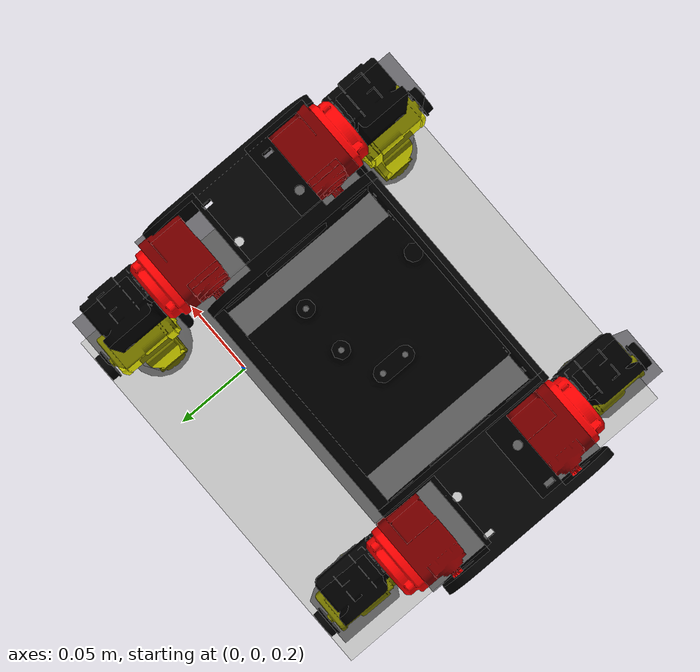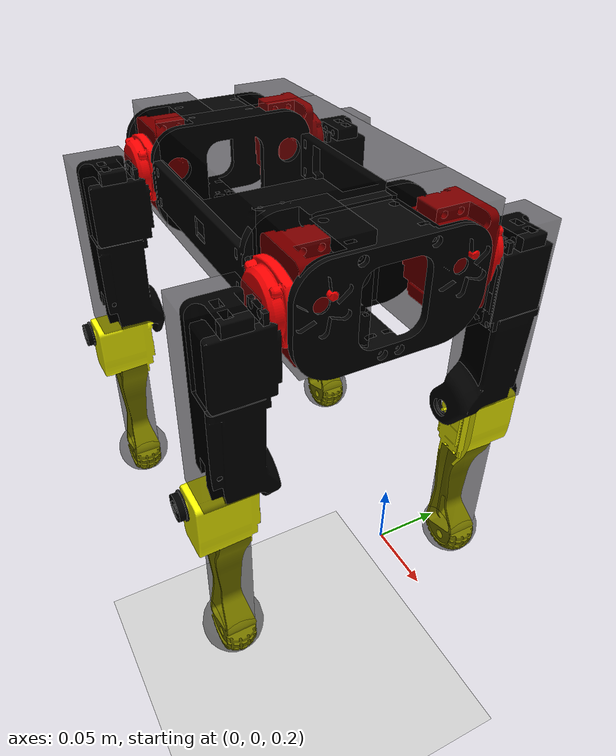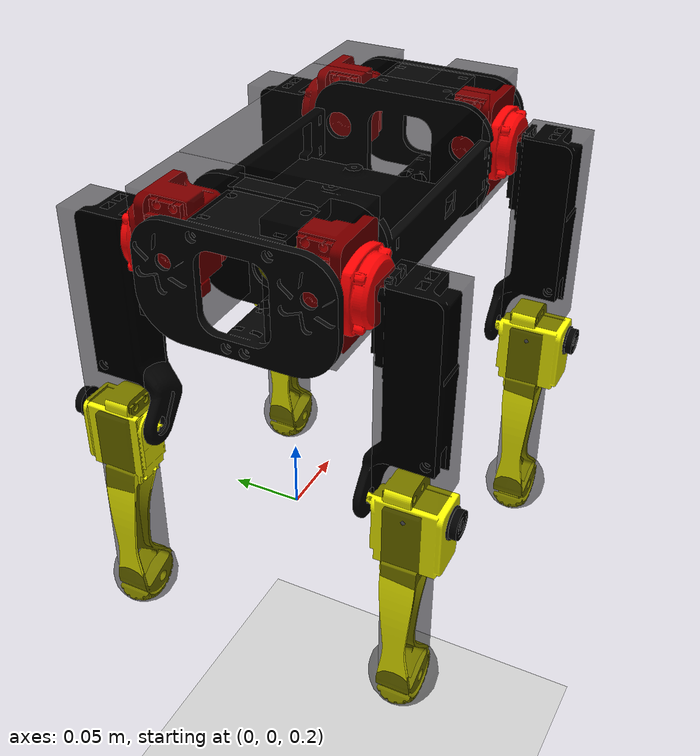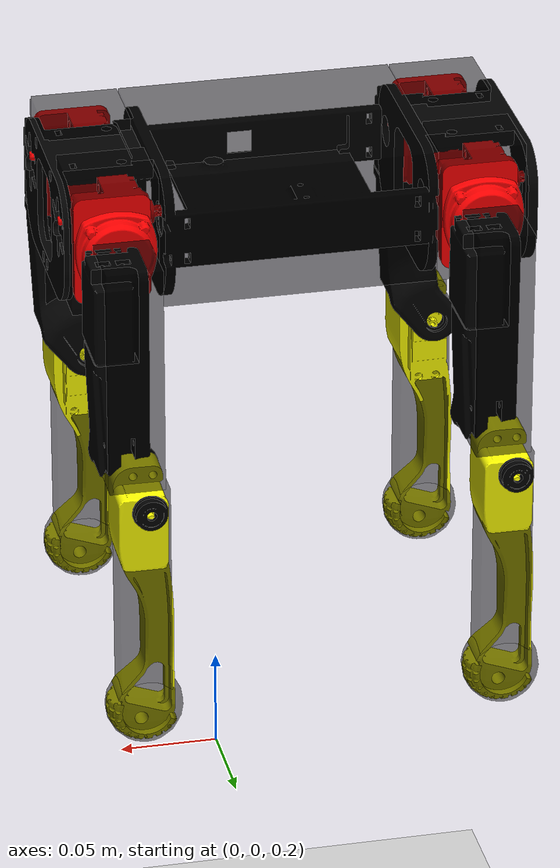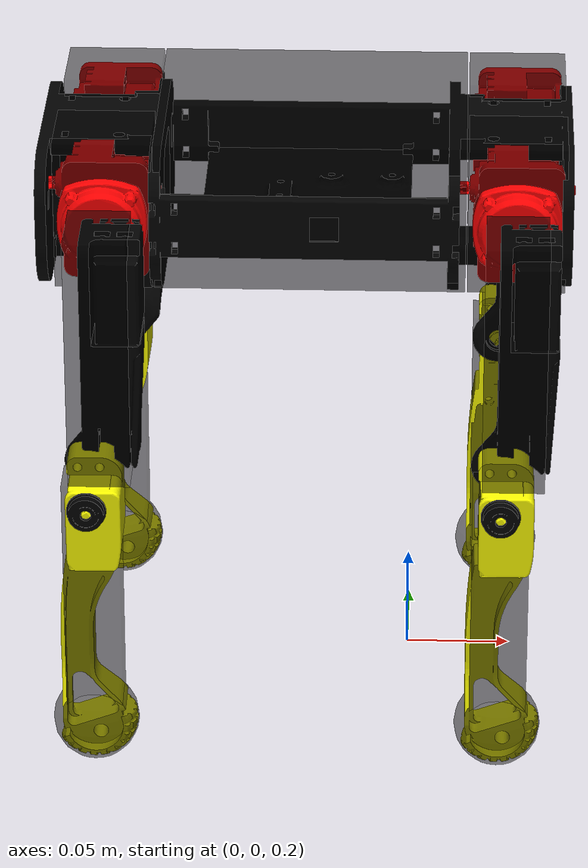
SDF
<?xml version="1.0" ?>
<sdf version="1.10">
    <world name="car_world">
        <physics name="1ms" type="ignored">
            <max_step_size>0.001</max_step_size>
            <real_time_factor>1.0</real_time_factor>
        </physics>
        <plugin
            filename="gz-sim-physics-system"
            name="gz::sim::systems::Physics">
        </plugin>
        <plugin
            filename="gz-sim-user-commands-system"
            name="gz::sim::systems::UserCommands">
        </plugin>
        <plugin
            filename="gz-sim-scene-broadcaster-system"
            name="gz::sim::systems::SceneBroadcaster">
        </plugin>

        <light type="directional" name="sun">
            <cast_shadows>true</cast_shadows>
            <pose>0 0 10 0 0 0</pose>
            <diffuse>0.8 0.8 0.8 1</diffuse>
            <specular>0.2 0.2 0.2 1</specular>
            <attenuation>
                <range>1000</range>
                <constant>0.9</constant>
                <linear>0.01</linear>
                <quadratic>0.001</quadratic>
            </attenuation>
            <direction>-0.5 0.1 -0.9</direction>
        </light>

        <model name="ground_plane">
            <static>true</static>
            <link name="link">
                <collision name="collision">
                <geometry>
                    <plane>
                    <normal>0 0 1</normal>
                    </plane>
                </geometry>
                </collision>
                <visual name="visual">
                <geometry>
                    <plane>
                    <normal>0 0 1</normal>
                    <size>100 100</size>
                    </plane>
                </geometry>
                <material>
                    <ambient>0.8 0.8 0.8 1</ambient>
                    <diffuse>0.8 0.8 0.8 1</diffuse>
                    <specular>0.8 0.8 0.8 1</specular>
                </material>
                </visual>
            </link>
        </model>

        <model name='spot' canonical_link='base_link'>
            <pose relative_to='world'>0 0 0.5 0 0 0</pose>

            <link name="base_link">
                <pose>-0.045 -0.060 -0.015 0 0 0</pose>
                <inertial>
                    <mass>2.8</mass>
                    <inertia>
                        <ixx>0.1</ixx>
                        <ixy>0</ixy>
                        <ixz>0</ixz>
                        <iyy>0.1</iyy>
                        <iyz>0</iyz>
                        <izz>0.1</izz>
                    </inertia>
                </inertial>
                <visual name='main_body'>
                    <pose>-0.045 -0.060 -0.015 0 0 0</pose>
                    <material>
                        <ambient>0 0 0 1</ambient>
                        <diffuse>0 0 0 1</diffuse>
                        <specular>0 0 0 1</specular>
                    </material>
                    <geometry>
                        <mesh>
                            <uri>../meshes/mainbody.stl</uri>
                            <scale>0.001 0.001 0.001</scale>
                        </mesh>
                    </geometry>
                </visual>
                <visual name='base_link_hitbox'>
                    <material>
                        <ambient>0 0 0 0.5</ambient>
                        <diffuse>0 0 0 0.5</diffuse>
                        <specular>0 0 0 0.5</specular>
                    </material>
                    <geometry>
                        <box>
                            <size>0.14 0.11 0.07 0 0 0</size>
                        </box>
                    </geometry>
                </visual>
                <collision name='main_body'>
                    <geometry>
                        <box>
                            <size>0.14 0.11 0.07 0 0 0</size>
                        </box>
                    </geometry>
                </collision>
            </link>

            <!-- Front Left Leg -->
            <link name='front_left_shoulder_link'>
                <visual name='front_left_shoulder'>
                    <pose>-0.135 -0.02 -0.01 0 0 0</pose>
                    <material>
                        <ambient>1 0 0 1</ambient>
                        <diffuse>1 0 0 1</diffuse>
                        <specular>1 0 0 1</specular>
                    </material>
                    <geometry>
                        <mesh>
                            <uri>../meshes/lshoulder.stl</uri>
                            <scale>0.001 0.001 0.001</scale>
                        </mesh>
                    </geometry>
                </visual>
                <visual name='front_left_shoulder_hitbox'>
                    <material>
                        <ambient>0 0 0 0.5</ambient>
                        <diffuse>0 0 0 0.5</diffuse>
                        <specular>0 0 0 0.5</specular>
                    </material>
                    <geometry>
                        <box>
                            <size>0.044 0.038 0.07</size>
                        </box>
                    </geometry>
                </visual>
                <collision name='front_left_shoulder'>
                    <geometry>
                        <box>
                            <size>0.044 0.038 0.07</size>
                        </box>
                    </geometry>
                </collision>
                <pose relative_to='front_left_shoulder'>0 0 0 0 0 0</pose>
                <inertial>
                    <mass>0.1</mass>
                    <inertia>
                        <ixx>0.1</ixx>
                        <ixy>0</ixy>
                        <ixz>0</ixz>
                        <iyy>0.1</iyy>
                        <iyz>0</iyz>
                        <izz>0.1</izz>
                    </inertia>
                </inertial>
            </link>

            <link name='front_left_leg_link'>
                <visual name='front_left_leg'>
                    <pose>-0.125 0.04 0.03 0 0 0</pose>
                    <material>
                        <ambient>0 0 0 1</ambient>
                        <diffuse>0 0 0 1</diffuse>
                        <specular>0 0 0 1</specular>
                    </material>
                    <geometry>
                        <mesh>
                            <uri>../meshes/larm.stl</uri>
                            <scale>0.001 0.001 0.001</scale>
                        </mesh>
                    </geometry>
                </visual>
                <visual name='front_left_leg_hitbox'>
                    <material>
                        <ambient>0 0 0 0.5</ambient>
                        <diffuse>0 0 0 0.5</diffuse>
                        <specular>0 0 0 0.5</specular>
                    </material>
                    <geometry>
                        <box>
                            <size>0.028 0.036 0.12</size>
                        </box>
                    </geometry>
                </visual>
                <collision name='front_left_leg'>
                    <geometry>
                        <box>
                            <size>0.028 0.036 0.12</size>
                        </box>
                    </geometry>
                </collision>
                <pose relative_to='front_left_leg'>0 0 -0.05 0 0 0</pose>
                <inertial>
                    <mass>0.15</mass>
                    <inertia>
                        <ixx>0.1</ixx>
                        <ixy>0</ixy>
                        <ixz>0</ixz>
                        <iyy>0.1</iyy>
                        <iyz>0</iyz>
                        <izz>0.1</izz>
                    </inertia>
                </inertial>

                <visual name='debug'>
                    <geometry>
                        <sphere>
                            <radius>0.005</radius>
                        </sphere>
                    </geometry>
                    <pose>-0.01 0 -0.072 0 0 0</pose>
                </visual>
            </link>

            <link name='front_left_foot_link'>
                <visual name='front_left_foot'>
                    <pose>-0.120 0.04 0.15 0 0 0</pose>
                    <material>
                        <ambient>1 1 0 1</ambient>
                        <diffuse>1 1 0 1</diffuse>
                        <specular>1 1 0 1</specular>
                    </material>
                    <geometry>
                        <mesh>
                            <uri>../meshes/lfoot.stl</uri>
                            <scale>0.001 0.001 0.001</scale>
                        </mesh>
                    </geometry>
                </visual>
                <visual name='front_left_foot_hitbox'>
                    <material>
                        <ambient>0 0 0 0.5</ambient>
                        <diffuse>0 0 0 0.5</diffuse>
                        <specular>0 0 0 0.5</specular>
                    </material>
                    <geometry>
                        <box>
                            <size>0.026 0.020 0.115</size>
                        </box>
                    </geometry>
                </visual>
                <collision name='front_left_foot'>
                    <geometry>
                        <box>
                            <size>0.026 0.020 0.115</size>
                        </box>
                    </geometry>
                </collision>
                <pose relative_to='front_left_foot'>0.0 0.0 -0.050 0 0 0</pose>
                <inertial>
                    <mass>0.1</mass>
                    <inertia>
                        <ixx>0.1</ixx>
                        <ixy>0</ixy>
                        <ixz>0</ixz>
                        <iyy>0.1</iyy>
                        <iyz>0</iyz>
                        <izz>0.1</izz>
                    </inertia>
                </inertial>
            </link>

            <link name='front_left_toe_link'>
                <visual name='front_left_foot'>
                    <pose>0 -0.01 0 0 -0.40010 0</pose>
                    <material>
                        <ambient>1 1 0 1</ambient>
                        <diffuse>1 1 0 1</diffuse>
                        <specular>1 1 0 1</specular>
                    </material>
                    <geometry>
                        <mesh>
                            <uri>../meshes/foot.stl</uri>
                            <scale>0.001 0.001 0.001</scale>
                        </mesh>
                    </geometry>
                </visual>
                <visual name='front_left_toe_hitbox'>
                    <material>
                        <ambient>0 0 0 0.5</ambient>
                        <diffuse>0 0 0 0.5</diffuse>
                        <specular>0 0 0 0.5</specular>
                    </material>
                    <geometry>
                        <sphere>
                            <radius>0.02</radius>
                        </sphere>
                    </geometry>
                </visual>
                <collision name='front_left_toe'>
                    <geometry>
                        <sphere>
                            <radius>0.02</radius>
                        </sphere>
                    </geometry>
                </collision>
                <pose relative_to='front_left_toe'>0 0 0 0 0 0</pose>
                <inertial>
                    <mass>0.1</mass>
                    <inertia>
                        <ixx>0.1</ixx>
                        <ixy>0</ixy>
                        <ixz>0</ixz>
                        <iyy>0.1</iyy>
                        <iyz>0</iyz>
                        <izz>0.1</izz>
                    </inertia>
                </inertial>
            </link>

            <joint name="front_left_shoulder" type="revolute">
                <pose relative_to='base_link'>-0.093 -0.036 0 0 0 0</pose>
                <parent>base_link</parent>
                <child>front_left_shoulder_link</child>
                <axis>
                    <xyz expressed_in='base_link'>1 0 0</xyz>
                    <limit>
                        <lower>-0.548</lower>
                        <upper>0.548</upper>
                    </limit>
                </axis>
            </joint>
            <joint name="front_left_leg" type="revolute">
                <pose relative_to='front_left_shoulder_link'>0 -0.052 0 0 0 0</pose>
                <parent>front_left_shoulder_link</parent>
                <child>front_left_leg_link</child>
                <axis>
                    <xyz expressed_in='front_left_shoulder_link'>0 1 0</xyz>
                    <limit>
                        <lower>-2.666</lower>
                        <upper>1.548</upper>
                    </limit>
                </axis>
            </joint>
            <joint name="front_left_foot" type="revolute">
                <pose relative_to='front_left_leg_link'>-0.005 0 -0.072 0 0 0</pose>
                <parent>front_left_leg_link</parent>
                <child>front_left_foot_link</child>
                <axis>
                    <xyz expressed_in='base_link'>0 1 0</xyz>
                    <limit>
                        <lower>-0.1</lower>
                        <upper>2.59</upper>
                    </limit>
                </axis>
            </joint>
            <joint name='front_left_toe' type='fixed'>
                <parent>front_left_foot_link</parent>
                <child>front_left_toe_link</child>
                <pose relative_to='front_left_foot_link'>0 0 -0.069 0 0 0</pose>
            </joint>

            <!-- FRONT RIGHT LEG -->

            <link name='front_right_shoulder_link'>
                <visual name='front_right_shoulder'>
                    <pose>-0.135 -0.09 -0.01 0 0 0</pose>
                    <material>
                        <ambient>1 0 0 1</ambient>
                        <diffuse>1 0 0 1</diffuse>
                        <specular>1 0 0 1</specular>
                    </material>
                    <geometry>
                        <mesh>
                            <uri>../meshes/rshoulder.stl</uri>
                            <scale>0.001 0.001 0.001</scale>
                        </mesh>
                    </geometry>
                </visual>
                <visual name='front_right_shoulder_hitbox'>
                    <material>
                        <ambient>0 0 0 0.5</ambient>
                        <diffuse>0 0 0 0.5</diffuse>
                        <specular>0 0 0 0.5</specular>
                    </material>
                    <geometry>
                        <box>
                            <size>0.044 0.038 0.07</size>
                        </box>
                    </geometry>
                </visual>
                <collision name='front_right_shoulder'>
                    <geometry>
                        <box>
                            <size>0.044 0.038 0.07</size>
                        </box>
                    </geometry>
                </collision>
                <pose relative_to='front_right_shoulder'>0 0 0 0 0 0</pose>
                <inertial>
                    <mass>0.1</mass>
                    <inertia>
                        <ixx>0.1</ixx>
                        <ixy>0</ixy>
                        <ixz>0</ixz>
                        <iyy>0.1</iyy>
                        <iyz>0</iyz>
                        <izz>0.1</izz>
                    </inertia>
                </inertial>
            </link>

            <link name='front_right_leg_link'>
                <visual name='front_right_leg'>
                    <pose>-0.125 -0.15 0.03 0 0 0</pose>
                    <material>
                        <ambient>0 0 0 1</ambient>
                        <diffuse>0 0 0 1</diffuse>
                        <specular>0 0 0 1</specular>
                    </material>
                    <geometry>
                        <mesh>
                            <uri>../meshes/rarm.stl</uri>
                            <scale>0.001 0.001 0.001</scale>
                        </mesh>
                    </geometry>
                </visual>
                <visual name='front_right_leg_hitbox'>
                    <material>
                        <ambient>0 0 0 0.5</ambient>
                        <diffuse>0 0 0 0.5</diffuse>
                        <specular>0 0 0 0.5</specular>
                    </material>
                    <geometry>
                        <box>
                            <size>0.028 0.036 0.12</size>
                        </box>
                    </geometry>
                </visual>
                <collision name='front_right_leg'>
                    <geometry>
                        <box>
                            <size>0.028 0.036 0.12</size>
                        </box>
                    </geometry>
                </collision>
                <pose relative_to='front_right_leg'>0 0 -0.05 0 0 0</pose>
                <inertial>
                    <mass>0.15</mass>
                    <inertia>
                        <ixx>0.1</ixx>
                        <ixy>0</ixy>
                        <ixz>0</ixz>
                        <iyy>0.1</iyy>
                        <iyz>0</iyz>
                        <izz>0.1</izz>
                    </inertia>
                </inertial>
            </link>

            <link name='front_right_foot_link'>
                <visual name='front_right_foot'>
                    <pose>-0.120 -0.15 0.15 0 0 0</pose>
                    <material>
                        <ambient>1 1 0 1</ambient>
                        <diffuse>1 1 0 1</diffuse>
                        <specular>1 1 0 1</specular>
                    </material>
                    <geometry>
                        <mesh>
                            <uri>../meshes/rfoot.stl</uri>
                            <scale>0.001 0.001 0.001</scale>
                        </mesh>
                    </geometry>
                </visual>
                <visual name='front_right_foot_hitbox'>
                    <material>
                        <ambient>0 0 0 0.5</ambient>
                        <diffuse>0 0 0 0.5</diffuse>
                        <specular>0 0 0 0.5</specular>
                    </material>
                    <geometry>
                        <box>
                            <size>0.026 0.020 0.115</size>
                        </box>
                    </geometry>
                </visual>
                <collision name='front_right_foot'>
                    <geometry>
                        <box>
                            <size>0.026 0.020 0.115</size>
                        </box>
                    </geometry>
                </collision>
                <pose relative_to='front_right_foot'>0.0 0.0 -0.050 0 0 0</pose>
                <inertial>
                    <mass>0.1</mass>
                    <inertia>
                        <ixx>0.1</ixx>
                        <ixy>0</ixy>
                        <ixz>0</ixz>
                        <iyy>0.1</iyy>
                        <iyz>0</iyz>
                        <izz>0.1</izz>
                    </inertia>
                </inertial>
            </link>

            <link name='front_right_toe_link'>
                <visual name='front_right_foot'>
                    <pose>0 -0.01 0 0 -0.40010 0</pose>
                    <material>
                        <ambient>1 1 0 1</ambient>
                        <diffuse>1 1 0 1</diffuse>
                        <specular>1 1 0 1</specular>
                    </material>
                    <geometry>
                        <mesh>
                            <uri>../meshes/foot.stl</uri>
                            <scale>0.001 0.001 0.001</scale>
                        </mesh>
                    </geometry>
                </visual>
                <visual name='front_right_toe_hitbox'>
                    <material>
                        <ambient>0 0 0 0.5</ambient>
                        <diffuse>0 0 0 0.5</diffuse>
                        <specular>0 0 0 0.5</specular>
                    </material>
                    <geometry>
                        <sphere>
                            <radius>0.02</radius>
                        </sphere>
                    </geometry>
                </visual>
                <collision name='front_right_toe'>
                    <geometry>
                        <sphere>
                            <radius>0.02</radius>
                        </sphere>
                    </geometry>
                </collision>
                <pose relative_to='front_right_toe'>0 0 0 0 0 0</pose>
                <inertial>
                    <mass>0.1</mass>
                    <inertia>
                        <ixx>0.1</ixx>
                        <ixy>0</ixy>
                        <ixz>0</ixz>
                        <iyy>0.1</iyy>
                        <iyz>0</iyz>
                        <izz>0.1</izz>
                    </inertia>
                </inertial>
            </link>

            <joint name="front_right_shoulder" type="revolute">
                <pose relative_to='base_link'>-0.093 0.036 0 0 0 0</pose>
                <parent>base_link</parent>
                <child>front_right_shoulder_link</child>
                <axis>
                    <xyz expressed_in='base_link'>1 0 0</xyz>
                    <limit>
                        <lower>-0.548</lower>
                        <upper>0.548</upper>
                    </limit>
                </axis>
            </joint>
            <joint name="front_right_leg" type="revolute">
                <pose relative_to='front_right_shoulder_link'>0 0.052 0 0 0 0</pose>
                <parent>front_right_shoulder_link</parent>
                <child>front_right_leg_link</child>
                <axis>
                    <xyz expressed_in='front_right_shoulder_link'>0 1 0</xyz>
                    <limit>
                        <lower>-2.666</lower>
                        <upper>1.548</upper>
                    </limit>
                </axis>
            </joint>
            <joint name="front_right_foot" type="revolute">
                <pose relative_to='front_right_leg_link'>-0.005 0 -0.072 0 0 0</pose>
                <parent>front_right_leg_link</parent>
                <child>front_right_foot_link</child>
                <axis>
                    <xyz expressed_in='base_link'>0 1 0</xyz>
                    <limit>
                        <lower>-0.1</lower>
                        <upper>2.59</upper>
                    </limit>
                </axis>
            </joint>
            <joint name='front_right_toe' type='fixed'>
                <parent>front_right_foot_link</parent>
                <child>front_right_toe_link</child>
                <pose relative_to='front_right_foot_link'>0 0 -0.069 0 0 0</pose>
            </joint>

            <!-- REAR LEFT LEG -->

            <link name='rear_left_shoulder_link'>
                <visual name='rear_left_shoulder'>
                    <pose>-0.135 -0.02 -0.01 0 0 0</pose>
                    <material>
                        <ambient>1 0 0 1</ambient>
                        <diffuse>1 0 0 1</diffuse>
                        <specular>1 0 0 1</specular>
                    </material>
                    <geometry>
                        <mesh>
                            <uri>../meshes/lshoulder.stl</uri>
                            <scale>0.001 0.001 0.001</scale>
                        </mesh>
                    </geometry>
                </visual>
                <visual name='rear_left_shoulder_hitbox'>
                    <material>
                        <ambient>0 0 0 0.5</ambient>
                        <diffuse>0 0 0 0.5</diffuse>
                        <specular>0 0 0 0.5</specular>
                    </material>
                    <geometry>
                        <box>
                            <size>0.044 0.038 0.07</size>
                        </box>
                    </geometry>
                </visual>
                <collision name='rear_left_shoulder'>
                    <geometry>
                        <box>
                            <size>0.044 0.038 0.07</size>
                        </box>
                    </geometry>
                </collision>
                <pose relative_to='rear_left_shoulder'>0 0 0 0 0 0</pose>
                <inertial>
                    <mass>0.1</mass>
                    <inertia>
                        <ixx>0.1</ixx>
                        <ixy>0</ixy>
                        <ixz>0</ixz>
                        <iyy>0.1</iyy>
                        <iyz>0</iyz>
                        <izz>0.1</izz>
                    </inertia>
                </inertial>
            </link>

            <link name='rear_left_leg_link'>
                <visual name='rear_left_leg'>
                    <pose>-0.125 0.04 0.03 0 0 0</pose>
                    <material>
                        <ambient>0 0 0 1</ambient>
                        <diffuse>0 0 0 1</diffuse>
                        <specular>0 0 0 1</specular>
                    </material>
                    <geometry>
                        <mesh>
                            <uri>../meshes/larm.stl</uri>
                            <scale>0.001 0.001 0.001</scale>
                        </mesh>
                    </geometry>
                </visual>
                <visual name='rear_left_leg_hitbox'>
                    <material>
                        <ambient>0 0 0 0.5</ambient>
                        <diffuse>0 0 0 0.5</diffuse>
                        <specular>0 0 0 0.5</specular>
                    </material>
                    <geometry>
                        <box>
                            <size>0.028 0.036 0.12</size>
                        </box>
                    </geometry>
                </visual>
                <collision name='rear_left_leg'>
                    <geometry>
                        <box>
                            <size>0.028 0.036 0.12</size>
                        </box>
                    </geometry>
                </collision>
                <pose relative_to='rear_left_leg'>0 0 -0.05 0 0 0</pose>
                <inertial>
                    <mass>0.15</mass>
                    <inertia>
                        <ixx>0.1</ixx>
                        <ixy>0</ixy>
                        <ixz>0</ixz>
                        <iyy>0.1</iyy>
                        <iyz>0</iyz>
                        <izz>0.1</izz>
                    </inertia>
                </inertial>

                <visual name='debug'>
                    <geometry>
                        <sphere>
                            <radius>0.005</radius>
                        </sphere>
                    </geometry>
                    <pose>-0.01 0 -0.072 0 0 0</pose>
                </visual>
            </link>

            <link name='rear_left_foot_link'>
                <visual name='rear_left_foot'>
                    <pose>-0.120 0.04 0.15 0 0 0</pose>
                    <material>
                        <ambient>1 1 0 1</ambient>
                        <diffuse>1 1 0 1</diffuse>
                        <specular>1 1 0 1</specular>
                    </material>
                    <geometry>
                        <mesh>
                            <uri>../meshes/lfoot.stl</uri>
                            <scale>0.001 0.001 0.001</scale>
                        </mesh>
                    </geometry>
                </visual>
                <visual name='rear_left_foot_hitbox'>
                    <material>
                        <ambient>0 0 0 0.5</ambient>
                        <diffuse>0 0 0 0.5</diffuse>
                        <specular>0 0 0 0.5</specular>
                    </material>
                    <geometry>
                        <box>
                            <size>0.026 0.020 0.115</size>
                        </box>
                    </geometry>
                </visual>
                <collision name='rear_left_foot'>
                    <geometry>
                        <box>
                            <size>0.026 0.020 0.115</size>
                        </box>
                    </geometry>
                </collision>
                <pose relative_to='rear_left_foot'>0.0 0.0 -0.050 0 0 0</pose>
                <inertial>
                    <mass>0.1</mass>
                    <inertia>
                        <ixx>0.1</ixx>
                        <ixy>0</ixy>
                        <ixz>0</ixz>
                        <iyy>0.1</iyy>
                        <iyz>0</iyz>
                        <izz>0.1</izz>
                    </inertia>
                </inertial>
            </link>

            <link name='rear_left_toe_link'>
                <visual name='rear_left_foot'>
                    <pose>0 -0.01 0 0 -0.40010 0</pose>
                    <material>
                        <ambient>1 1 0 1</ambient>
                        <diffuse>1 1 0 1</diffuse>
                        <specular>1 1 0 1</specular>
                    </material>
                    <geometry>
                        <mesh>
                            <uri>../meshes/foot.stl</uri>
                            <scale>0.001 0.001 0.001</scale>
                        </mesh>
                    </geometry>
                </visual>
                <visual name='rear_left_toe_hitbox'>
                    <material>
                        <ambient>0 0 0 0.5</ambient>
                        <diffuse>0 0 0 0.5</diffuse>
                        <specular>0 0 0 0.5</specular>
                    </material>
                    <geometry>
                        <sphere>
                            <radius>0.02</radius>
                        </sphere>
                    </geometry>
                </visual>
                <collision name='rear_left_toe'>
                    <geometry>
                        <sphere>
                            <radius>0.02</radius>
                        </sphere>
                    </geometry>
                </collision>
                <pose relative_to='rear_left_toe'>0 0 0 0 0 0</pose>
                <inertial>
                    <mass>0.1</mass>
                    <inertia>
                        <ixx>0.1</ixx>
                        <ixy>0</ixy>
                        <ixz>0</ixz>
                        <iyy>0.1</iyy>
                        <iyz>0</iyz>
                        <izz>0.1</izz>
                    </inertia>
                </inertial>
            </link>

            <joint name="rear_left_shoulder" type="revolute">
                <pose relative_to='base_link'>0.093 -0.036 0 0 0 0</pose>
                <parent>base_link</parent>
                <child>rear_left_shoulder_link</child>
                <axis>
                    <xyz expressed_in='base_link'>1 0 0</xyz>
                    <limit>
                        <lower>-0.548</lower>
                        <upper>0.548</upper>
                    </limit>
                </axis>
            </joint>
            <joint name="rear_left_leg" type="revolute">
                <pose relative_to='rear_left_shoulder_link'>0 -0.052 0 0 0 0</pose>
                <parent>rear_left_shoulder_link</parent>
                <child>rear_left_leg_link</child>
                <axis>
                    <xyz expressed_in='rear_left_shoulder_link'>0 1 0</xyz>
                    <limit>
                        <lower>-2.666</lower>
                        <upper>1.548</upper>
                    </limit>
                </axis>
            </joint>
            <joint name="rear_left_foot" type="revolute">
                <pose relative_to='rear_left_leg_link'>-0.005 0 -0.072 0 0 0</pose>
                <parent>rear_left_leg_link</parent>
                <child>rear_left_foot_link</child>
                <axis>
                    <xyz expressed_in='base_link'>0 1 0</xyz>
                    <limit>
                        <lower>-0.1</lower>
                        <upper>2.59</upper>
                    </limit>
                </axis>
            </joint>
            <joint name='rear_left_toe' type='fixed'>
                <parent>rear_left_foot_link</parent>
                <child>rear_left_toe_link</child>
                <pose relative_to='rear_left_foot_link'>0 0 -0.069 0 0 0</pose>
            </joint>

            <!-- REAR RIGHT LEG -->

            <link name='rear_right_shoulder_link'>
                <visual name='rear_right_shoulder'>
                    <pose>-0.135 -0.09 -0.01 0 0 0</pose>
                    <material>
                        <ambient>1 0 0 1</ambient>
                        <diffuse>1 0 0 1</diffuse>
                        <specular>1 0 0 1</specular>
                    </material>
                    <geometry>
                        <mesh>
                            <uri>../meshes/rshoulder.stl</uri>
                            <scale>0.001 0.001 0.001</scale>
                        </mesh>
                    </geometry>
                </visual>
                <visual name='rear_right_shoulder_hitbox'>
                    <material>
                        <ambient>0 0 0 0.5</ambient>
                        <diffuse>0 0 0 0.5</diffuse>
                        <specular>0 0 0 0.5</specular>
                    </material>
                    <geometry>
                        <box>
                            <size>0.044 0.038 0.07</size>
                        </box>
                    </geometry>
                </visual>
                <collision name='rear_right_shoulder'>
                    <geometry>
                        <box>
                            <size>0.044 0.038 0.07</size>
                        </box>
                    </geometry>
                </collision>
                <pose relative_to='rear_right_shoulder'>0 0 0 0 0 0</pose>
                <inertial>
                    <mass>0.1</mass>
                    <inertia>
                        <ixx>0.1</ixx>
                        <ixy>0</ixy>
                        <ixz>0</ixz>
                        <iyy>0.1</iyy>
                        <iyz>0</iyz>
                        <izz>0.1</izz>
                    </inertia>
                </inertial>
            </link>

            <link name='rear_right_leg_link'>
                <visual name='rear_right_leg'>
                    <pose>-0.125 -0.15 0.03 0 0 0</pose>
                    <material>
                        <ambient>0 0 0 1</ambient>
                        <diffuse>0 0 0 1</diffuse>
                        <specular>0 0 0 1</specular>
                    </material>
                    <geometry>
                        <mesh>
                            <uri>../meshes/rarm.stl</uri>
                            <scale>0.001 0.001 0.001</scale>
                        </mesh>
                    </geometry>
                </visual>
                <visual name='rear_right_leg_hitbox'>
                    <material>
                        <ambient>0 0 0 0.5</ambient>
                        <diffuse>0 0 0 0.5</diffuse>
                        <specular>0 0 0 0.5</specular>
                    </material>
                    <geometry>
                        <box>
                            <size>0.028 0.036 0.12</size>
                        </box>
                    </geometry>
                </visual>
                <collision name='rear_right_leg'>
                    <geometry>
                        <box>
                            <size>0.028 0.036 0.12</size>
                        </box>
                    </geometry>
                </collision>
                <pose relative_to='rear_right_leg'>0 0 -0.05 0 0 0</pose>
                <inertial>
                    <mass>0.15</mass>
                    <inertia>
                        <ixx>0.1</ixx>
                        <ixy>0</ixy>
                        <ixz>0</ixz>
                        <iyy>0.1</iyy>
                        <iyz>0</iyz>
                        <izz>0.1</izz>
                    </inertia>
                </inertial>
            </link>

            <link name='rear_right_foot_link'>
                <visual name='rear_right_foot'>
                    <pose>-0.120 -0.15 0.15 0 0 0</pose>
                    <material>
                        <ambient>1 1 0 1</ambient>
                        <diffuse>1 1 0 1</diffuse>
                        <specular>1 1 0 1</specular>
                    </material>
                    <geometry>
                        <mesh>
                            <uri>../meshes/rfoot.stl</uri>
                            <scale>0.001 0.001 0.001</scale>
                        </mesh>
                    </geometry>
                </visual>
                <visual name='rear_right_foot_hitbox'>
                    <material>
                        <ambient>0 0 0 0.5</ambient>
                        <diffuse>0 0 0 0.5</diffuse>
                        <specular>0 0 0 0.5</specular>
                    </material>
                    <geometry>
                        <box>
                            <size>0.026 0.020 0.115</size>
                        </box>
                    </geometry>
                </visual>
                <collision name='rear_right_foot'>
                    <geometry>
                        <box>
                            <size>0.026 0.020 0.115</size>
                        </box>
                    </geometry>
                </collision>
                <pose relative_to='rear_right_foot'>0.0 0.0 -0.050 0 0 0</pose>
                <inertial>
                    <mass>0.1</mass>
                    <inertia>
                        <ixx>0.1</ixx>
                        <ixy>0</ixy>
                        <ixz>0</ixz>
                        <iyy>0.1</iyy>
                        <iyz>0</iyz>
                        <izz>0.1</izz>
                    </inertia>
                </inertial>
            </link>

            <link name='rear_right_toe_link'>
                <visual name='rear_right_foot'>
                    <pose>0 -0.01 0 0 -0.40010 0</pose>
                    <material>
                        <ambient>1 1 0 1</ambient>
                        <diffuse>1 1 0 1</diffuse>
                        <specular>1 1 0 1</specular>
                    </material>
                    <geometry>
                        <mesh>
                            <uri>../meshes/foot.stl</uri>
                            <scale>0.001 0.001 0.001</scale>
                        </mesh>
                    </geometry>
                </visual>
                <visual name='rear_right_toe_hitbox'>
                    <material>
                        <ambient>0 0 0 0.5</ambient>
                        <diffuse>0 0 0 0.5</diffuse>
                        <specular>0 0 0 0.5</specular>
                    </material>
                    <geometry>
                        <sphere>
                            <radius>0.02</radius>
                        </sphere>
                    </geometry>
                </visual>
                <collision name='rear_right_toe'>
                    <geometry>
                        <sphere>
                            <radius>0.02</radius>
                        </sphere>
                    </geometry>
                </collision>
                <pose relative_to='rear_right_toe'>0 0 0 0 0 0</pose>
                <inertial>
                    <mass>0.1</mass>
                    <inertia>
                        <ixx>0.1</ixx>
                        <ixy>0</ixy>
                        <ixz>0</ixz>
                        <iyy>0.1</iyy>
                        <iyz>0</iyz>
                        <izz>0.1</izz>
                    </inertia>
                </inertial>
            </link>

            <joint name="rear_right_shoulder" type="revolute">
                <pose relative_to='base_link'>0.093 0.036 0 0 0 0</pose>
                <parent>base_link</parent>
                <child>rear_right_shoulder_link</child>
                <axis>
                    <xyz expressed_in='base_link'>1 0 0</xyz>
                    <limit>
                        <lower>-0.548</lower>
                        <upper>0.548</upper>
                    </limit>
                </axis>
            </joint>
            <joint name="rear_right_leg" type="revolute">
                <pose relative_to='rear_right_shoulder_link'>0 0.052 0 0 0 0</pose>
                <parent>rear_right_shoulder_link</parent>
                <child>rear_right_leg_link</child>
                <axis>
                    <xyz expressed_in='rear_right_shoulder_link'>0 1 0</xyz>
                    <limit>
                        <lower>-2.666</lower>
                        <upper>1.548</upper>
                    </limit>
                </axis>
            </joint>
            <joint name="rear_right_foot" type="revolute">
                <pose relative_to='rear_right_leg_link'>-0.005 0 -0.072 0 0 0</pose>
                <parent>rear_right_leg_link</parent>
                <child>rear_right_foot_link</child>
                <axis>
                    <xyz expressed_in='base_link'>0 1 0</xyz>
                    <limit>
                        <lower>-0.1</lower>
                        <upper>2.59</upper>
                    </limit>
                </axis>
            </joint>
            <joint name='rear_right_toe' type='fixed'>
                <parent>rear_right_foot_link</parent>
                <child>rear_right_toe_link</child>
                <pose relative_to='rear_right_foot_link'>0 0 -0.069 0 0 0</pose>
            </joint>

            <!-- JOINT POSITION CONTROLLERS -->
            <plugin
                filename="gz-sim-joint-position-controller-system"
                name="gz::sim::systems::JointPositionController">
                <joint_name>front_left_shoulder</joint_name>
                <topic>front_left_shoulder_position</topic>
                <p_gain>20.0</p_gain>
                <i_gain>0.01</i_gain>
                <d_gain>7</d_gain>
                <i_max>0.1</i_max>
                <i_min>-0.1</i_min>
                <cmd_max>1000</cmd_max>
                <cmd_min>-1000</cmd_min>
                <initial_position>0</initial_position>
           </plugin>

           <plugin
                filename="gz-sim-joint-state-publisher-system"
                name="gz::sim::systems::JointStatePublisher">
                <joint_name>front_left_shoulder</joint_name>
            </plugin>

           <plugin
                filename="gz-sim-joint-position-controller-system"
                name="gz::sim::systems::JointPositionController">
                <joint_name>front_left_leg</joint_name>
                <topic>front_left_leg_position</topic>
                <p_gain>20.0</p_gain>
                <i_gain>0.01</i_gain>
                <d_gain>7</d_gain>
                <i_max>1</i_max>
                <i_min>-1</i_min>
                <cmd_max>1000</cmd_max>
                <cmd_min>-1000</cmd_min>
                <initial_position>-0.610865</initial_position>
            </plugin>

            <plugin
                filename="gz-sim-joint-state-publisher-system"
                name="gz::sim::systems::JointStatePublisher">
                <joint_name>front_left_leg</joint_name>
            </plugin>

            <plugin
                filename="gz-sim-joint-position-controller-system"
                name="gz::sim::systems::JointPositionController">
                <joint_name>front_left_foot</joint_name>
                <topic>front_left_foot_position</topic>
                <p_gain>20.0</p_gain>
                <i_gain>0.01</i_gain>
                <d_gain>7</d_gain>
                <i_max>1</i_max>
                <i_min>-1</i_min>
                <cmd_max>1000</cmd_max>
                <cmd_min>-1000</cmd_min>
                <initial_position>1.39626</initial_position>
            </plugin>
            <plugin
                filename="gz-sim-joint-state-publisher-system"
                name="gz::sim::systems::JointStatePublisher">
                <joint_name>front_left_foot</joint_name>
            </plugin>

            <plugin
                filename="gz-sim-joint-position-controller-system"
                name="gz::sim::systems::JointPositionController">
                <joint_name>front_right_shoulder</joint_name>
                <topic>front_right_shoulder_position</topic>
                <p_gain>20.0</p_gain>
                <i_gain>0.01</i_gain>
                <d_gain>7</d_gain>
                <i_max>1</i_max>
                <i_min>-1</i_min>
                <cmd_max>1000</cmd_max>
                <cmd_min>-1000</cmd_min>
                <initial_position>0</initial_position>
           </plugin>
           <plugin
                filename="gz-sim-joint-state-publisher-system"
                name="gz::sim::systems::JointStatePublisher">
                <joint_name>front_right_shoulder</joint_name>
            </plugin>

           <plugin
                filename="gz-sim-joint-position-controller-system"
                name="gz::sim::systems::JointPositionController">
                <joint_name>front_right_leg</joint_name>
                <topic>front_right_leg_position</topic>
                <p_gain>20.0</p_gain>
                <i_gain>0.01</i_gain>
                <d_gain>7</d_gain>
                <i_max>1</i_max>
                <i_min>-1</i_min>
                <cmd_max>1000</cmd_max>
                <cmd_min>-1000</cmd_min>
                <initial_position>-0.610865</initial_position>
            </plugin>
            <plugin
                filename="gz-sim-joint-state-publisher-system"
                name="gz::sim::systems::JointStatePublisher">
                <joint_name>front_right_leg</joint_name>
            </plugin>

            <plugin
                filename="gz-sim-joint-position-controller-system"
                name="gz::sim::systems::JointPositionController">
                <joint_name>front_right_foot</joint_name>
                <topic>front_right_foot_position</topic>
                <p_gain>20.0</p_gain>
                <i_gain>0.01</i_gain>
                <d_gain>7</d_gain>
                <i_max>1</i_max>
                <i_min>-1</i_min>
                <cmd_max>1000</cmd_max>
                <cmd_min>-1000</cmd_min>
                <initial_position>1.39626</initial_position>
            </plugin>
            <plugin
                filename="gz-sim-joint-state-publisher-system"
                name="gz::sim::systems::JointStatePublisher">
                <joint_name>front_right_foot</joint_name>
            </plugin>

            <plugin
                filename="gz-sim-joint-position-controller-system"
                name="gz::sim::systems::JointPositionController">
                <joint_name>rear_left_shoulder</joint_name>
                <topic>rear_left_shoulder_position</topic>
                <p_gain>20.0</p_gain>
                <i_gain>0.01</i_gain>
                <d_gain>7</d_gain>
                <i_max>1</i_max>
                <i_min>-1</i_min>
                <cmd_max>1000</cmd_max>
                <cmd_min>-1000</cmd_min>
                <initial_position>0</initial_position>
           </plugin>
           <plugin
                filename="gz-sim-joint-state-publisher-system"
                name="gz::sim::systems::JointStatePublisher">
                <joint_name>rear_left_shoulder</joint_name>
            </plugin>
           <plugin
                filename="gz-sim-joint-position-controller-system"
                name="gz::sim::systems::JointPositionController">
                <joint_name>rear_left_leg</joint_name>
                <topic>rear_left_leg_position</topic>
                <p_gain>20.0</p_gain>
                <i_gain>0.01</i_gain>
                <d_gain>7</d_gain>
                <i_max>1</i_max>
                <i_min>-1</i_min>
                <cmd_max>1000</cmd_max>
                <cmd_min>-1000</cmd_min>
                <initial_position>-0.610865</initial_position>
            </plugin>
            <plugin
                filename="gz-sim-joint-state-publisher-system"
                name="gz::sim::systems::JointStatePublisher">
                <joint_name>rear_left_leg</joint_name>
            </plugin>
            <plugin
                filename="gz-sim-joint-position-controller-system"
                name="gz::sim::systems::JointPositionController">
                <joint_name>rear_left_foot</joint_name>
                <topic>rear_left_foot_position</topic>
                <p_gain>20.0</p_gain>
                <i_gain>0.01</i_gain>
                <d_gain>7</d_gain>
                <i_max>1</i_max>
                <i_min>-1</i_min>
                <cmd_max>1000</cmd_max>
                <cmd_min>-1000</cmd_min>
                <initial_position>1.39626</initial_position>
            </plugin>
            <plugin
                filename="gz-sim-joint-state-publisher-system"
                name="gz::sim::systems::JointStatePublisher">
                <joint_name>rear_left_foot</joint_name>
            </plugin>

            <plugin
                filename="gz-sim-joint-position-controller-system"
                name="gz::sim::systems::JointPositionController">
                <joint_name>rear_right_shoulder</joint_name>
                <topic>rear_right_shoulder_position</topic>
                <p_gain>20.0</p_gain>
                <i_gain>0.01</i_gain>
                <d_gain>7</d_gain>
                <i_max>1</i_max>
                <i_min>-1</i_min>
                <cmd_max>1000</cmd_max>
                <cmd_min>-1000</cmd_min>
                <initial_position>0</initial_position>
           </plugin>
           <plugin
                filename="gz-sim-joint-state-publisher-system"
                name="gz::sim::systems::JointStatePublisher">
                <joint_name>rear_right_shoulder</joint_name>
            </plugin>
           <plugin
                filename="gz-sim-joint-position-controller-system"
                name="gz::sim::systems::JointPositionController">
                <joint_name>rear_right_leg</joint_name>
                <topic>rear_right_leg_position</topic>
                <p_gain>20.0</p_gain>
                <i_gain>0.01</i_gain>
                <d_gain>7</d_gain>
                <i_max>1</i_max>
                <i_min>-1</i_min>
                <cmd_max>1000</cmd_max>
                <cmd_min>-1000</cmd_min>
                <initial_position>-0.610865</initial_position>
            </plugin>
            <plugin
                filename="gz-sim-joint-state-publisher-system"
                name="gz::sim::systems::JointStatePublisher">
                <joint_name>rear_right_leg</joint_name>
            </plugin>
            <plugin
                filename="gz-sim-joint-position-controller-system"
                name="gz::sim::systems::JointPositionController">
                <joint_name>rear_right_foot</joint_name>
                <topic>rear_right_foot_position</topic>
                <p_gain>20.0</p_gain>
                <i_gain>0.01</i_gain>
                <d_gain>7</d_gain>
                <i_max>1</i_max>
                <i_min>-1</i_min>
                <cmd_max>1000</cmd_max>
                <cmd_min>-1000</cmd_min>
                <initial_position>1.39626</initial_position>
            </plugin>
            <plugin
                filename="gz-sim-joint-state-publisher-system"
                name="gz::sim::systems::JointStatePublisher">
                <joint_name>rear_right_foot</joint_name>
            </plugin>

        </model>
    </world>
</sdf>
